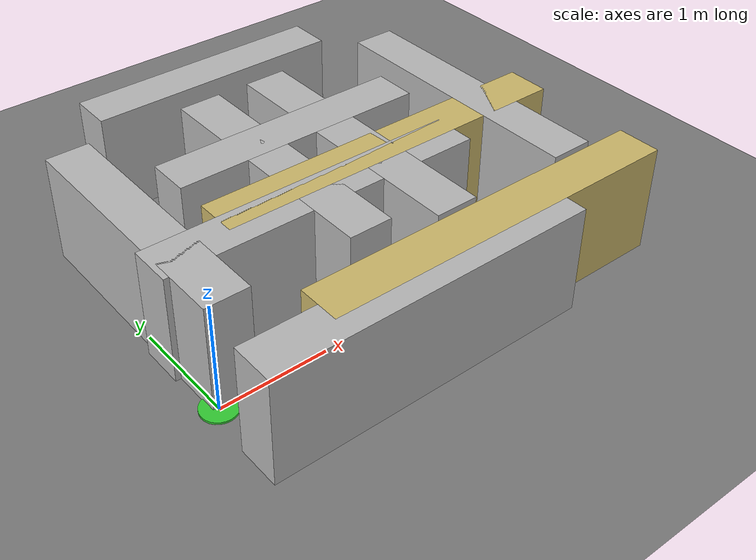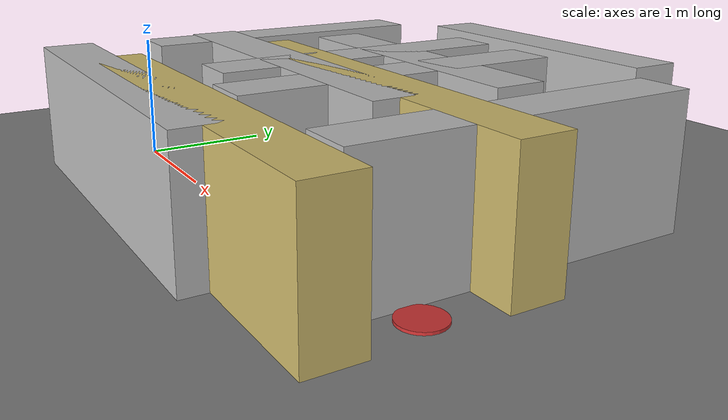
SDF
<?xml version="1.0"?>
<sdf version="1.8">
  <world name="baseline_sharp_turns">
    <physics name="1ms" type="ignored">
      <max_step_size>0.001</max_step_size>
      <real_time_factor>1.0</real_time_factor>
    </physics>
    <plugin filename="gz-sim-physics-system" name="gz::sim::systems::Physics"/>
    <plugin filename="gz-sim-sensors-system" name="gz::sim::systems::Sensors">
      <render_engine>ogre2</render_engine>
    </plugin>
    <plugin filename="gz-sim-user-commands-system" name="gz::sim::systems::UserCommands"/>
    <plugin filename="gz-sim-scene-broadcaster-system" name="gz::sim::systems::SceneBroadcaster"/>

    <gravity>0 0 -9.81</gravity>

    <light name="sun" type="directional">
      <cast_shadows>true</cast_shadows>
      <pose>0 0 10 0 0 0</pose>
      <diffuse>0.8 0.8 0.8 1</diffuse>
      <specular>0.2 0.2 0.2 1</specular>
      <attenuation>
        <range>1000</range>
        <constant>0.9</constant>
        <linear>0.01</linear>
        <quadratic>0.001</quadratic>
      </attenuation>
      <direction>-0.5 0.1 -0.9</direction>
    </light>

    <model name="ground_plane">
      <static>true</static>
      <link name="link">
        <collision name="collision"><geometry><plane><normal>0 0 1</normal><size>100 100</size></plane></geometry></collision>
        <visual name="visual"><geometry><plane><normal>0 0 1</normal><size>100 100</size></plane></geometry><material><ambient>0.48 0.48 0.48 1</ambient><diffuse>0.48 0.48 0.48 1</diffuse></material></visual>
      </link>
    </model>

    <!-- Segment 1: straight approach -->
    <model name="s1_top"><static>true</static><pose>1.4 0.65 0.5 0 0 0</pose><link name="link"><collision name="c"><geometry><box><size>3.0 0.4 1.0</size></box></geometry></collision><visual name="v"><geometry><box><size>3.0 0.4 1.0</size></box></geometry></visual></link></model>
    <model name="s1_bottom"><static>true</static><pose>1.4 -0.65 0.5 0 0 0</pose><link name="link"><collision name="c"><geometry><box><size>3.0 0.4 1.0</size></box></geometry></collision><visual name="v"><geometry><box><size>3.0 0.4 1.0</size></box></geometry></visual></link></model>

    <!-- Segment 2: L-turn vertical channel -->
    <model name="s2_left"><static>true</static><pose>2.15 1.10 0.5 0 0 0</pose><link name="link"><collision name="c"><geometry><box><size>0.4 2.6 1.0</size></box></geometry></collision><visual name="v"><geometry><box><size>0.4 2.6 1.0</size></box></geometry></visual></link></model>
    <model name="s2_right"><static>true</static><pose>3.45 1.10 0.5 0 0 0</pose><link name="link"><collision name="c"><geometry><box><size>0.4 2.6 1.0</size></box></geometry></collision><visual name="v"><geometry><box><size>0.4 2.6 1.0</size></box></geometry></visual></link></model>

    <!-- Segment 3: leftward run (sets up hairpin) -->
    <model name="s3_top"><static>true</static><pose>1.8 2.85 0.5 0 0 0</pose><link name="link"><collision name="c"><geometry><box><size>2.4 0.4 1.0</size></box></geometry></collision><visual name="v"><geometry><box><size>2.4 0.4 1.0</size></box></geometry></visual></link></model>
    <model name="s3_bottom"><static>true</static><pose>1.8 1.55 0.5 0 0 0</pose><link name="link"><collision name="c"><geometry><box><size>2.4 0.4 1.0</size></box></geometry></collision><visual name="v"><geometry><box><size>2.4 0.4 1.0</size></box></geometry></visual></link></model>

    <!-- Segment 4: down turn (hairpin return) -->
    <model name="s4_left"><static>true</static><pose>0.15 1.2 0.5 0 0 0</pose><link name="link"><collision name="c"><geometry><box><size>0.4 2.4 1.0</size></box></geometry></collision><visual name="v"><geometry><box><size>0.4 2.4 1.0</size></box></geometry></visual></link></model>
    <model name="s4_right"><static>true</static><pose>1.45 1.2 0.5 0 0 0</pose><link name="link"><collision name="c"><geometry><box><size>0.4 2.4 1.0</size></box></geometry></collision><visual name="v"><geometry><box><size>0.4 2.4 1.0</size></box></geometry></visual></link></model>

    <!-- Segment 5: final straight after U-turn -->
    <model name="s5_top"><static>true</static><pose>2.3 0.85 0.5 0 0 0</pose><link name="link"><collision name="c"><geometry><box><size>3.4 0.4 1.0</size></box></geometry></collision><visual name="v"><geometry><box><size>3.4 0.4 1.0</size></box></geometry><material><ambient>0.80 0.72 0.42 1</ambient><diffuse>0.80 0.72 0.42 1</diffuse></material></visual></link></model>
    <model name="s5_bottom"><static>true</static><pose>2.3 -0.45 0.5 0 0 0</pose><link name="link"><collision name="c"><geometry><box><size>3.4 0.4 1.0</size></box></geometry></collision><visual name="v"><geometry><box><size>3.4 0.4 1.0</size></box></geometry><material><ambient>0.80 0.72 0.42 1</ambient><diffuse>0.80 0.72 0.42 1</diffuse></material></visual></link></model>

    <model name="start_marker"><static>true</static><pose>0.0 0.0 0.01 0 0 0</pose><link name="link"><visual name="v"><geometry><cylinder><radius>0.16</radius><length>0.02</length></cylinder></geometry><material><ambient>0.2 0.8 0.2 1</ambient><diffuse>0.2 0.8 0.2 1</diffuse></material></visual></link></model>
    <model name="goal_marker"><static>true</static><pose>3.8 0.2 0.01 0 0 0</pose><link name="link"><visual name="v"><geometry><cylinder><radius>0.16</radius><length>0.02</length></cylinder></geometry><material><ambient>0.8 0.2 0.2 1</ambient><diffuse>0.8 0.2 0.2 1</diffuse></material></visual></link></model>
  </world>
</sdf>
